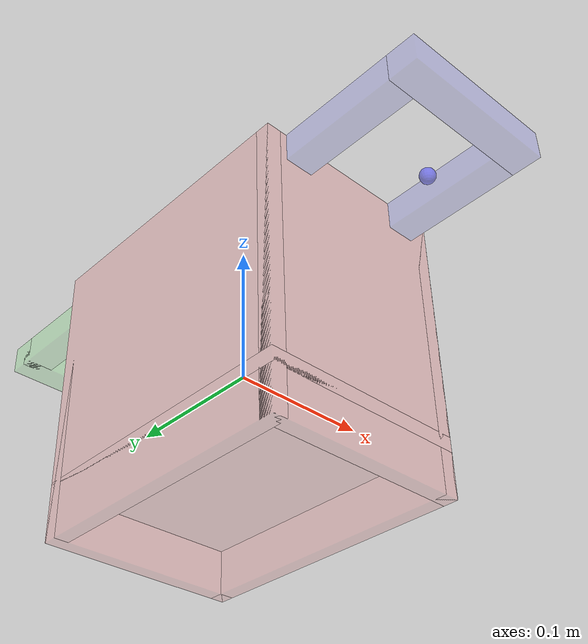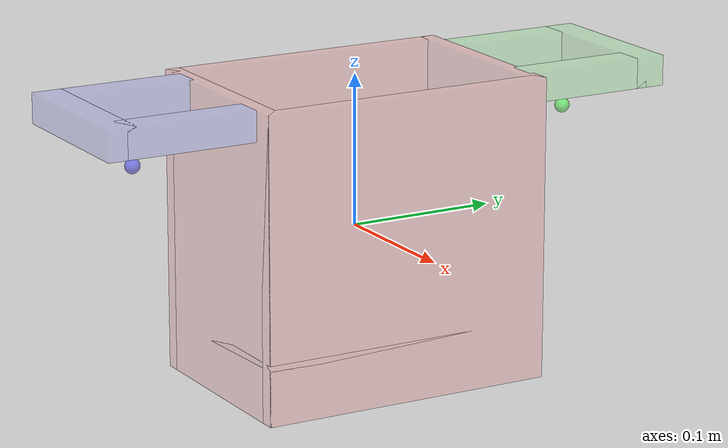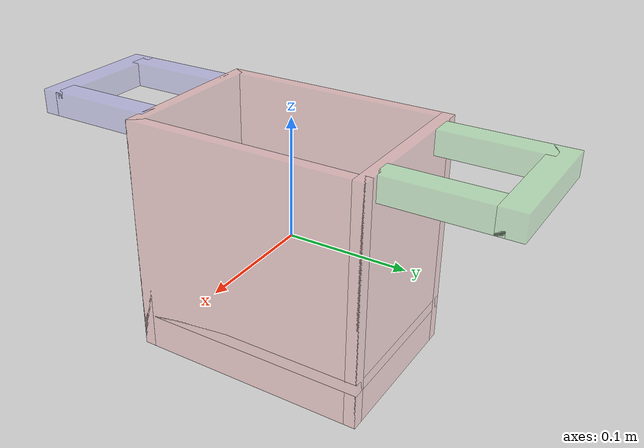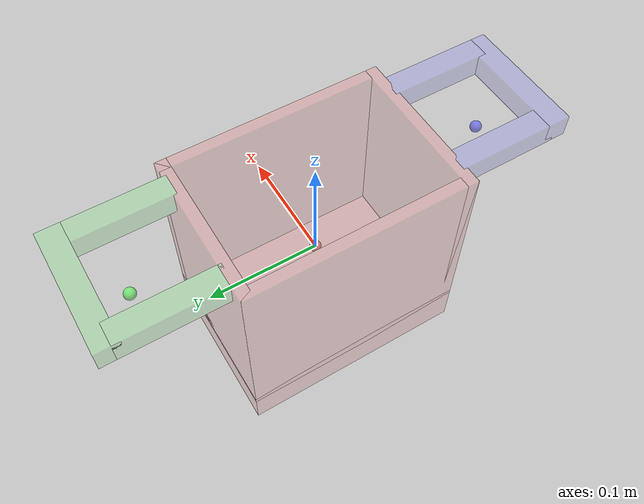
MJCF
<mujoco model="pot_visual">
    <asset>
        <!-- RGBA materials for transparency - no textures needed -->
        <material name="pot_rgba" rgba="1.0 0.3 0.3 0.1" specular="0.4" shininess="0.1" />
        <material name="handle0_rgba" rgba="0.3 1.0 0.3 0.1" specular="0.4" shininess="0.1" />
        <material name="handle1_rgba" rgba="0.3 0.3 1.0 0.1" specular="0.4" shininess="0.1" />
    </asset>

    <worldbody>
        <body>
            <body name="object">
                <!-- Pot base -->
                <geom name="base" type="box" size="0.07 0.10 0.005" pos="0 0 -0.065"
                      material="pot_rgba" group="1" conaffinity="0" contype="0"/>

                <!-- Pot walls -->
                <!-- Front wall -->
                <geom name="body0" type="box" size="0.005 0.10 0.10" pos="-0.065 0 0"
                      material="pot_rgba" group="1" conaffinity="0" contype="0"/>
                <!-- Left wall -->
                <geom name="body1" type="box" size="0.07 0.005 0.10" pos="0 -0.095 0"
                      material="pot_rgba" group="1" conaffinity="0" contype="0"/>
                <!-- Back wall -->
                <geom name="body2" type="box" size="0.005 0.10 0.10" pos="0.065 0 0"
                      material="pot_rgba" group="1" conaffinity="0" contype="0"/>
                <!-- Right wall -->
                <geom name="body3" type="box" size="0.07 0.005 0.10" pos="0 0.095 0"
                      material="pot_rgba" group="1" conaffinity="0" contype="0"/>

                <!-- Handle 0 (Green) - Right side -->
                <!-- Center bar -->
                <geom name="handle0_c" type="box" size="0.055 0.01 0.01" pos="0 0.19 0.09"
                      material="handle0_rgba" group="1" conaffinity="0" contype="0"/>
                <!-- Side bars -->
                <geom name="handle0_-" type="box" size="0.01 0.045 0.01" pos="-0.045 0.142 0.09"
                      material="handle0_rgba" group="1" conaffinity="0" contype="0"/>
                <geom name="handle0_+" type="box" size="0.01 0.045 0.01" pos="0.045 0.142 0.09"
                      material="handle0_rgba" group="1" conaffinity="0" contype="0"/>

                <!-- Handle 1 (Blue) - Left side -->
                <!-- Center bar -->
                <geom name="handle1_c" type="box" size="0.055 0.01 0.01" pos="0 -0.19 0.09"
                      material="handle1_rgba" group="1" conaffinity="0" contype="0"/>
                <!-- Side bars -->
                <geom name="handle1_-" type="box" size="0.01 0.045 0.01" pos="-0.045 -0.142 0.09"
                      material="handle1_rgba" group="1" conaffinity="0" contype="0"/>
                <geom name="handle1_+" type="box" size="0.01 0.045 0.01" pos="0.045 -0.142 0.09"
                      material="handle1_rgba" group="1" conaffinity="0" contype="0"/>

                <!-- Important sites -->
                <site name="handle0" pos="0 0.158 0.06" size="0.005" rgba="0.3 1.0 0.3 0.6"/>
                <site name="handle1" pos="0 -0.158 0.06" size="0.005" rgba="0.3 0.3 1.0 0.6"/>
                <site name="center" pos="0 0 0" size="0.005" rgba="1.0 0.3 0.3 0.6"/>

                <!-- Reference sites for placement -->
                <site name="bottom_site" pos="0 0 -0.07" rgba="0 0 0 0" size="0.005"/>
                <site name="top_site" pos="0 0 0.07" rgba="0 0 0 0" size="0.005"/>
                <site name="horizontal_radius_site" pos="0 0 0" rgba="0 0 0 0" size="0.2"/>
            </body>
        </body>
    </worldbody>
</mujoco>
